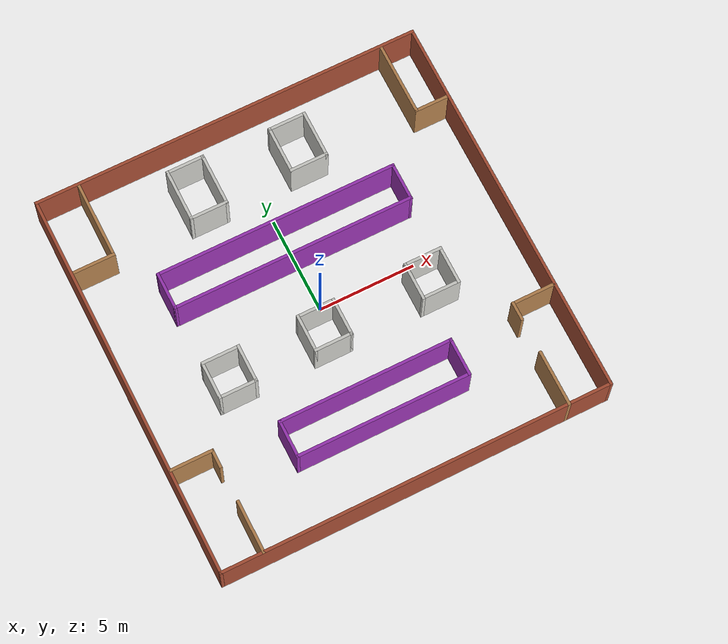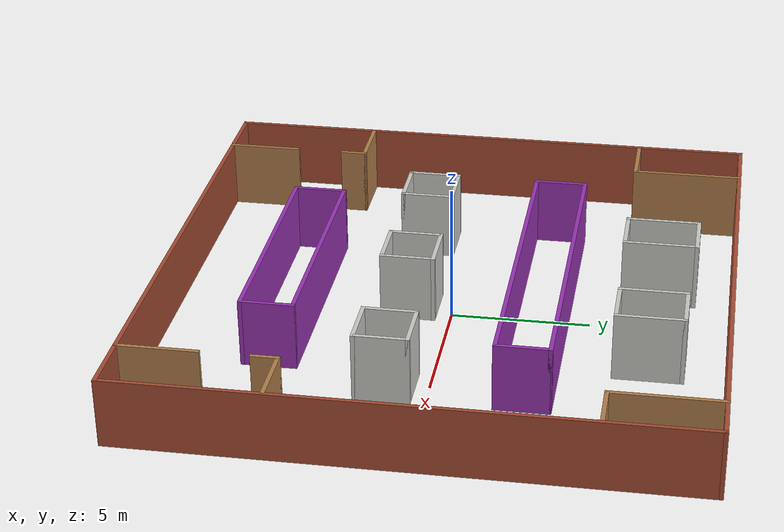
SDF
<?xml version='1.0'?>
<sdf version='1.7'>
  <model name='house'>
    <pose>0 -8.9e-05 0 0 -0 0</pose>
    <link name='Wall_0'>
      <collision name='Wall_0_Collision'>
        <geometry>
          <box>
            <size>2 0.15 2.5</size>
          </box>
        </geometry>
        <pose>0 0 1.25 0 -0 0</pose>
      </collision>
      <visual name='Wall_0_Visual'>
        <pose>0 0 1.25 0 -0 0</pose>
        <geometry>
          <box>
            <size>2 0.15 2.5</size>
          </box>
        </geometry>
        <material>
          <script>
            <uri>file://media/materials/scripts/gazebo.material</uri>
            <name>Gazebo/CeilingTiled</name>
          </script>
          <ambient>1 1 1 1</ambient>
        </material>
        <meta>
          <layer>0</layer>
        </meta>
      </visual>
      <pose>-0.536584 -2.46607 0 0 -0 0</pose>
    </link>
    <link name='Wall_1'>
      <collision name='Wall_1_Collision'>
        <geometry>
          <box>
            <size>2 0.15 2.5</size>
          </box>
        </geometry>
        <pose>0 0 1.25 0 -0 0</pose>
      </collision>
      <visual name='Wall_1_Visual'>
        <pose>0 0 1.25 0 -0 0</pose>
        <geometry>
          <box>
            <size>2 0.15 2.5</size>
          </box>
        </geometry>
        <material>
          <script>
            <uri>file://media/materials/scripts/gazebo.material</uri>
            <name>Gazebo/CeilingTiled</name>
          </script>
          <ambient>1 1 1 1</ambient>
        </material>
        <meta>
          <layer>0</layer>
        </meta>
      </visual>
      <pose>0.388416 -1.54107 0 0 -0 1.5708</pose>
    </link>
    <link name='Wall_10'>
      <collision name='Wall_10_Collision'>
        <geometry>
          <box>
            <size>2 0.15 2.5</size>
          </box>
        </geometry>
        <pose>0 0 1.25 0 -0 0</pose>
      </collision>
      <visual name='Wall_10_Visual'>
        <pose>0 0 1.25 0 -0 0</pose>
        <geometry>
          <box>
            <size>2 0.15 2.5</size>
          </box>
        </geometry>
        <material>
          <script>
            <uri>file://media/materials/scripts/gazebo.material</uri>
            <name>Gazebo/CeilingTiled</name>
          </script>
          <ambient>1 1 1 1</ambient>
        </material>
        <meta>
          <layer>0</layer>
        </meta>
      </visual>
      <pose>-4.57919 -1.61774 0 0 -0 1.5708</pose>
    </link>
    <link name='Wall_11'>
      <collision name='Wall_11_Collision'>
        <geometry>
          <box>
            <size>2 0.15 2.5</size>
          </box>
        </geometry>
        <pose>0 0 1.25 0 -0 0</pose>
      </collision>
      <visual name='Wall_11_Visual'>
        <pose>0 0 1.25 0 -0 0</pose>
        <geometry>
          <box>
            <size>2 0.15 2.5</size>
          </box>
        </geometry>
        <material>
          <script>
            <uri>file://media/materials/scripts/gazebo.material</uri>
            <name>Gazebo/CeilingTiled</name>
          </script>
          <ambient>1 1 1 1</ambient>
        </material>
        <meta>
          <layer>0</layer>
        </meta>
      </visual>
      <pose>-5.50419 -0.692743 0 0 -0 3.14159</pose>
    </link>
    <link name='Wall_12'>
      <collision name='Wall_12_Collision'>
        <geometry>
          <box>
            <size>2 0.15 2.5</size>
          </box>
        </geometry>
        <pose>0 0 1.25 0 -0 0</pose>
      </collision>
      <visual name='Wall_12_Visual'>
        <pose>0 0 1.25 0 -0 0</pose>
        <geometry>
          <box>
            <size>2 0.15 2.5</size>
          </box>
        </geometry>
        <material>
          <script>
            <uri>file://media/materials/scripts/gazebo.material</uri>
            <name>Gazebo/CeilingTiled</name>
          </script>
          <ambient>1 1 1 1</ambient>
        </material>
        <meta>
          <layer>0</layer>
        </meta>
      </visual>
      <pose>-6.42919 -1.61774 0 0 -0 -1.5708</pose>
    </link>
    <link name='Wall_13'>
      <collision name='Wall_13_Collision'>
        <geometry>
          <box>
            <size>2 0.15 2.5</size>
          </box>
        </geometry>
        <pose>0 0 1.25 0 -0 0</pose>
      </collision>
      <visual name='Wall_13_Visual'>
        <pose>0 0 1.25 0 -0 0</pose>
        <geometry>
          <box>
            <size>2 0.15 2.5</size>
          </box>
        </geometry>
        <material>
          <script>
            <uri>file://media/materials/scripts/gazebo.material</uri>
            <name>Gazebo/CeilingTiled</name>
          </script>
          <ambient>1 1 1 1</ambient>
        </material>
        <meta>
          <layer>0</layer>
        </meta>
      </visual>
      <pose>-5.50419 -2.54274 0 0 -0 0</pose>
    </link>
    <link name='Wall_15'>
      <collision name='Wall_15_Collision'>
        <geometry>
          <box>
            <size>12.5 0.15 2.5</size>
          </box>
        </geometry>
        <pose>0 0 1.25 0 -0 0</pose>
      </collision>
      <visual name='Wall_15_Visual'>
        <pose>0 0 1.25 0 -0 0</pose>
        <geometry>
          <box>
            <size>12.5 0.15 2.5</size>
          </box>
        </geometry>
        <material>
          <lighting>1</lighting>
          <script>
            <uri>file://media/materials/scripts/gazebo.material</uri>
            <name>Gazebo/Purple</name>
          </script>
          <shader type='pixel'>
            <normal_map>__default__</normal_map>
          </shader>
          <ambient>1 0 1 1</ambient>
          <diffuse>1 0 1 1</diffuse>
          <specular>0.1 0.1 0.1 1</specular>
          <emissive>0 0 0 1</emissive>
        </material>
        <meta>
          <layer>0</layer>
        </meta>
      </visual>
      <pose>-0.210973 2.33564 0 0 -0 0</pose>
    </link>
    <link name='Wall_16'>
      <collision name='Wall_16_Collision'>
        <geometry>
          <box>
            <size>2 0.15 2.5</size>
          </box>
        </geometry>
        <pose>0 0 1.25 0 -0 0</pose>
      </collision>
      <visual name='Wall_16_Visual'>
        <pose>0 0 1.25 0 -0 0</pose>
        <geometry>
          <box>
            <size>2 0.15 2.5</size>
          </box>
        </geometry>
        <material>
          <lighting>1</lighting>
          <script>
            <uri>file://media/materials/scripts/gazebo.material</uri>
            <name>Gazebo/Purple</name>
          </script>
          <shader type='pixel'>
            <normal_map>__default__</normal_map>
          </shader>
          <ambient>1 0 1 1</ambient>
          <diffuse>1 0 1 1</diffuse>
          <specular>0.1 0.1 0.1 1</specular>
          <emissive>0 0 0 1</emissive>
        </material>
        <meta>
          <layer>0</layer>
        </meta>
      </visual>
      <pose>5.96403 3.26064 0 0 -0 1.5708</pose>
    </link>
    <link name='Wall_17'>
      <collision name='Wall_17_Collision'>
        <geometry>
          <box>
            <size>12.5 0.15 2.5</size>
          </box>
        </geometry>
        <pose>0 0 1.25 0 -0 0</pose>
      </collision>
      <visual name='Wall_17_Visual'>
        <pose>0 0 1.25 0 -0 0</pose>
        <geometry>
          <box>
            <size>12.5 0.15 2.5</size>
          </box>
        </geometry>
        <material>
          <lighting>1</lighting>
          <script>
            <uri>file://media/materials/scripts/gazebo.material</uri>
            <name>Gazebo/Purple</name>
          </script>
          <shader type='pixel'>
            <normal_map>__default__</normal_map>
          </shader>
          <ambient>1 0 1 1</ambient>
          <diffuse>1 0 1 1</diffuse>
          <specular>0.1 0.1 0.1 1</specular>
          <emissive>0 0 0 1</emissive>
        </material>
        <meta>
          <layer>0</layer>
        </meta>
      </visual>
      <pose>-0.210973 4.18565 0 0 -0 3.14159</pose>
    </link>
    <link name='Wall_18'>
      <collision name='Wall_18_Collision'>
        <geometry>
          <box>
            <size>2 0.15 2.5</size>
          </box>
        </geometry>
        <pose>0 0 1.25 0 -0 0</pose>
      </collision>
      <visual name='Wall_18_Visual'>
        <pose>0 0 1.25 0 -0 0</pose>
        <geometry>
          <box>
            <size>2 0.15 2.5</size>
          </box>
        </geometry>
        <material>
          <lighting>1</lighting>
          <script>
            <uri>file://media/materials/scripts/gazebo.material</uri>
            <name>Gazebo/Purple</name>
          </script>
          <shader type='pixel'>
            <normal_map>__default__</normal_map>
          </shader>
          <ambient>1 0 1 1</ambient>
          <diffuse>1 0 1 1</diffuse>
          <specular>0.1 0.1 0.1 1</specular>
          <emissive>0 0 0 1</emissive>
        </material>
        <meta>
          <layer>0</layer>
        </meta>
      </visual>
      <pose>-6.38597 3.26064 0 0 -0 -1.5708</pose>
    </link>
    <link name='Wall_2'>
      <collision name='Wall_2_Collision'>
        <geometry>
          <box>
            <size>2 0.15 2.5</size>
          </box>
        </geometry>
        <pose>0 0 1.25 0 -0 0</pose>
      </collision>
      <visual name='Wall_2_Visual'>
        <pose>0 0 1.25 0 -0 0</pose>
        <geometry>
          <box>
            <size>2 0.15 2.5</size>
          </box>
        </geometry>
        <material>
          <script>
            <uri>file://media/materials/scripts/gazebo.material</uri>
            <name>Gazebo/CeilingTiled</name>
          </script>
          <ambient>1 1 1 1</ambient>
        </material>
        <meta>
          <layer>0</layer>
        </meta>
      </visual>
      <pose>-0.536584 -0.616074 0 0 -0 3.14159</pose>
    </link>
    <link name='Wall_26'>
      <collision name='Wall_26_Collision'>
        <geometry>
          <box>
            <size>2 0.15 2.5</size>
          </box>
        </geometry>
        <pose>0 0 1.25 0 -0 0</pose>
      </collision>
      <visual name='Wall_26_Visual'>
        <pose>0 0 1.25 0 -0 0</pose>
        <geometry>
          <box>
            <size>2 0.15 2.5</size>
          </box>
        </geometry>
        <material>
          <script>
            <uri>file://media/materials/scripts/gazebo.material</uri>
            <name>Gazebo/CeilingTiled</name>
          </script>
          <ambient>1 1 1 1</ambient>
        </material>
        <meta>
          <layer>0</layer>
        </meta>
      </visual>
      <pose>-2.85415 6.03307 0 0 -0 0</pose>
    </link>
    <link name='Wall_27'>
      <collision name='Wall_27_Collision'>
        <geometry>
          <box>
            <size>2.75 0.15 2.5</size>
          </box>
        </geometry>
        <pose>0 0 1.25 0 -0 0</pose>
      </collision>
      <visual name='Wall_27_Visual'>
        <pose>0 0 1.25 0 -0 0</pose>
        <geometry>
          <box>
            <size>2.75 0.15 2.5</size>
          </box>
        </geometry>
        <material>
          <script>
            <uri>file://media/materials/scripts/gazebo.material</uri>
            <name>Gazebo/CeilingTiled</name>
          </script>
          <ambient>1 1 1 1</ambient>
        </material>
        <meta>
          <layer>0</layer>
        </meta>
      </visual>
      <pose>-1.92915 7.33307 0 0 -0 1.5708</pose>
    </link>
    <link name='Wall_3'>
      <collision name='Wall_3_Collision'>
        <geometry>
          <box>
            <size>2 0.15 2.5</size>
          </box>
        </geometry>
        <pose>0 0 1.25 0 -0 0</pose>
      </collision>
      <visual name='Wall_3_Visual'>
        <pose>0 0 1.25 0 -0 0</pose>
        <geometry>
          <box>
            <size>2 0.15 2.5</size>
          </box>
        </geometry>
        <material>
          <script>
            <uri>file://media/materials/scripts/gazebo.material</uri>
            <name>Gazebo/CeilingTiled</name>
          </script>
          <ambient>1 1 1 1</ambient>
        </material>
        <meta>
          <layer>0</layer>
        </meta>
      </visual>
      <pose>-1.46158 -1.54107 0 0 -0 -1.5708</pose>
    </link>
    <link name='Wall_30'>
      <collision name='Wall_30_Collision'>
        <geometry>
          <box>
            <size>2.75 0.15 2.5</size>
          </box>
        </geometry>
        <pose>0 0 1.25 0 -0 0</pose>
      </collision>
      <visual name='Wall_30_Visual'>
        <pose>0 0 1.25 0 -0 0</pose>
        <geometry>
          <box>
            <size>2.75 0.15 2.5</size>
          </box>
        </geometry>
        <material>
          <script>
            <uri>file://media/materials/scripts/gazebo.material</uri>
            <name>Gazebo/CeilingTiled</name>
          </script>
          <ambient>1 1 1 1</ambient>
        </material>
        <meta>
          <layer>0</layer>
        </meta>
      </visual>
      <pose>-3.77915 7.33307 0 0 -0 1.5708</pose>
    </link>
    <link name='Wall_31'>
      <collision name='Wall_31_Collision'>
        <geometry>
          <box>
            <size>2 0.15 2.5</size>
          </box>
        </geometry>
        <pose>0 0 1.25 0 -0 0</pose>
      </collision>
      <visual name='Wall_31_Visual'>
        <pose>0 0 1.25 0 -0 0</pose>
        <geometry>
          <box>
            <size>2 0.15 2.5</size>
          </box>
        </geometry>
        <material>
          <script>
            <uri>file://media/materials/scripts/gazebo.material</uri>
            <name>Gazebo/CeilingTiled</name>
          </script>
          <ambient>1 1 1 1</ambient>
        </material>
        <meta>
          <layer>0</layer>
        </meta>
      </visual>
      <pose>-2.85415 8.63307 0 0 -0 0</pose>
    </link>
    <link name='Wall_33'>
      <collision name='Wall_33_Collision'>
        <geometry>
          <box>
            <size>2 0.15 2.5</size>
          </box>
        </geometry>
        <pose>0 0 1.25 0 -0 0</pose>
      </collision>
      <visual name='Wall_33_Visual'>
        <pose>0 0 1.25 0 -0 0</pose>
        <geometry>
          <box>
            <size>2 0.15 2.5</size>
          </box>
        </geometry>
        <material>
          <script>
            <uri>file://media/materials/scripts/gazebo.material</uri>
            <name>Gazebo/CeilingTiled</name>
          </script>
          <ambient>1 1 1 1</ambient>
        </material>
        <meta>
          <layer>0</layer>
        </meta>
      </visual>
      <pose>2.46259 6.11826 0 0 -0 0</pose>
    </link>
    <link name='Wall_34'>
      <collision name='Wall_34_Collision'>
        <geometry>
          <box>
            <size>2.5 0.15 2.5</size>
          </box>
        </geometry>
        <pose>0 0 1.25 0 -0 0</pose>
      </collision>
      <visual name='Wall_34_Visual'>
        <pose>0 0 1.25 0 -0 0</pose>
        <geometry>
          <box>
            <size>2.5 0.15 2.5</size>
          </box>
        </geometry>
        <material>
          <script>
            <uri>file://media/materials/scripts/gazebo.material</uri>
            <name>Gazebo/CeilingTiled</name>
          </script>
          <ambient>1 1 1 1</ambient>
        </material>
        <meta>
          <layer>0</layer>
        </meta>
      </visual>
      <pose>3.38759 7.29326 0 0 -0 1.5708</pose>
    </link>
    <link name='Wall_35'>
      <collision name='Wall_35_Collision'>
        <geometry>
          <box>
            <size>2 0.15 2.5</size>
          </box>
        </geometry>
        <pose>0 0 1.25 0 -0 0</pose>
      </collision>
      <visual name='Wall_35_Visual'>
        <pose>0 0 1.25 0 -0 0</pose>
        <geometry>
          <box>
            <size>2 0.15 2.5</size>
          </box>
        </geometry>
        <material>
          <script>
            <uri>file://media/materials/scripts/gazebo.material</uri>
            <name>Gazebo/CeilingTiled</name>
          </script>
          <ambient>1 1 1 1</ambient>
        </material>
        <meta>
          <layer>0</layer>
        </meta>
      </visual>
      <pose>2.46259 8.46826 0 0 -0 3.14159</pose>
    </link>
    <link name='Wall_36'>
      <collision name='Wall_36_Collision'>
        <geometry>
          <box>
            <size>2.5 0.15 2.5</size>
          </box>
        </geometry>
        <pose>0 0 1.25 0 -0 0</pose>
      </collision>
      <visual name='Wall_36_Visual'>
        <pose>0 0 1.25 0 -0 0</pose>
        <geometry>
          <box>
            <size>2.5 0.15 2.5</size>
          </box>
        </geometry>
        <material>
          <script>
            <uri>file://media/materials/scripts/gazebo.material</uri>
            <name>Gazebo/CeilingTiled</name>
          </script>
          <ambient>1 1 1 1</ambient>
        </material>
        <meta>
          <layer>0</layer>
        </meta>
      </visual>
      <pose>1.53759 7.29326 0 0 -0 -1.5708</pose>
    </link>
    <link name='Wall_40'>
      <collision name='Wall_40_Collision'>
        <geometry>
          <box>
            <size>9 0.15 2.5</size>
          </box>
        </geometry>
        <pose>0 0 1.25 0 -0 0</pose>
      </collision>
      <visual name='Wall_40_Visual'>
        <pose>0 0 1.25 0 -0 0</pose>
        <geometry>
          <box>
            <size>9 0.15 2.5</size>
          </box>
        </geometry>
        <material>
          <lighting>1</lighting>
          <script>
            <uri>file://media/materials/scripts/gazebo.material</uri>
            <name>Gazebo/Purple</name>
          </script>
          <shader type='pixel'>
            <normal_map>__default__</normal_map>
          </shader>
          <ambient>1 0 1 1</ambient>
          <diffuse>1 0 1 1</diffuse>
          <specular>0.1 0.1 0.1 1</specular>
          <emissive>0 0 0 1</emissive>
        </material>
        <meta>
          <layer>0</layer>
        </meta>
      </visual>
      <pose>-0.049056 -4.81442 0 0 -0 0</pose>
    </link>
    <link name='Wall_41'>
      <collision name='Wall_41_Collision'>
        <geometry>
          <box>
            <size>2 0.15 2.5</size>
          </box>
        </geometry>
        <pose>0 0 1.25 0 -0 0</pose>
      </collision>
      <visual name='Wall_41_Visual'>
        <pose>0 0 1.25 0 -0 0</pose>
        <geometry>
          <box>
            <size>2 0.15 2.5</size>
          </box>
        </geometry>
        <material>
          <lighting>1</lighting>
          <script>
            <uri>file://media/materials/scripts/gazebo.material</uri>
            <name>Gazebo/Purple</name>
          </script>
          <shader type='pixel'>
            <normal_map>__default__</normal_map>
          </shader>
          <ambient>1 0 1 1</ambient>
          <diffuse>1 0 1 1</diffuse>
          <specular>0.1 0.1 0.1 1</specular>
          <emissive>0 0 0 1</emissive>
        </material>
        <meta>
          <layer>0</layer>
        </meta>
      </visual>
      <pose>4.37594 -5.73942 0 0 -0 -1.5708</pose>
    </link>
    <link name='Wall_42'>
      <collision name='Wall_42_Collision'>
        <geometry>
          <box>
            <size>9 0.15 2.5</size>
          </box>
        </geometry>
        <pose>0 0 1.25 0 -0 0</pose>
      </collision>
      <visual name='Wall_42_Visual'>
        <pose>0 0 1.25 0 -0 0</pose>
        <geometry>
          <box>
            <size>9 0.15 2.5</size>
          </box>
        </geometry>
        <material>
          <lighting>1</lighting>
          <script>
            <uri>file://media/materials/scripts/gazebo.material</uri>
            <name>Gazebo/Purple</name>
          </script>
          <shader type='pixel'>
            <normal_map>__default__</normal_map>
          </shader>
          <ambient>1 0 1 1</ambient>
          <diffuse>1 0 1 1</diffuse>
          <specular>0.1 0.1 0.1 1</specular>
          <emissive>0 0 0 1</emissive>
        </material>
        <meta>
          <layer>0</layer>
        </meta>
      </visual>
      <pose>-0.049056 -6.66442 0 0 -0 3.14159</pose>
    </link>
    <link name='Wall_43'>
      <collision name='Wall_43_Collision'>
        <geometry>
          <box>
            <size>2 0.15 2.5</size>
          </box>
        </geometry>
        <pose>0 0 1.25 0 -0 0</pose>
      </collision>
      <visual name='Wall_43_Visual'>
        <pose>0 0 1.25 0 -0 0</pose>
        <geometry>
          <box>
            <size>2 0.15 2.5</size>
          </box>
        </geometry>
        <material>
          <lighting>1</lighting>
          <script>
            <uri>file://media/materials/scripts/gazebo.material</uri>
            <name>Gazebo/Purple</name>
          </script>
          <shader type='pixel'>
            <normal_map>__default__</normal_map>
          </shader>
          <ambient>1 0 1 1</ambient>
          <diffuse>1 0 1 1</diffuse>
          <specular>0.1 0.1 0.1 1</specular>
          <emissive>0 0 0 1</emissive>
        </material>
        <meta>
          <layer>0</layer>
        </meta>
      </visual>
      <pose>-4.47406 -5.73942 0 0 -0 1.5708</pose>
    </link>
    <link name='Wall_5'>
      <collision name='Wall_5_Collision'>
        <geometry>
          <box>
            <size>2 0.15 2.5</size>
          </box>
        </geometry>
        <pose>0 0 1.25 0 -0 0</pose>
      </collision>
      <visual name='Wall_5_Visual'>
        <pose>0 0 1.25 0 -0 0</pose>
        <geometry>
          <box>
            <size>2 0.15 2.5</size>
          </box>
        </geometry>
        <material>
          <script>
            <uri>file://media/materials/scripts/gazebo.material</uri>
            <name>Gazebo/CeilingTiled</name>
          </script>
          <ambient>1 1 1 1</ambient>
        </material>
        <meta>
          <layer>0</layer>
        </meta>
      </visual>
      <pose>5.11049 -0.561674 0 0 -0 0</pose>
    </link>
    <link name='Wall_51'>
      <collision name='Wall_51_Collision'>
        <geometry>
          <box>
            <size>2.91936 0.15 2.5</size>
          </box>
        </geometry>
        <pose>0 0 1.25 0 -0 0</pose>
      </collision>
      <visual name='Wall_51_Visual'>
        <pose>0 0 1.25 0 -0 0</pose>
        <geometry>
          <box>
            <size>2.91936 0.15 2.5</size>
          </box>
        </geometry>
        <material>
          <script>
            <uri>file://media/materials/scripts/gazebo.material</uri>
            <name>Gazebo/Wood</name>
          </script>
          <ambient>1 1 1 1</ambient>
        </material>
        <meta>
          <layer>0</layer>
        </meta>
      </visual>
      <pose>7.806 -8.61541 0 0 -0 1.5708</pose>
    </link>
    <link name='Wall_53'>
      <collision name='Wall_53_Collision'>
        <geometry>
          <box>
            <size>1 0.15 2.5</size>
          </box>
        </geometry>
        <pose>0 0 1.25 0 -0 0</pose>
      </collision>
      <visual name='Wall_53_Visual'>
        <pose>0 0 1.25 0 -0 0</pose>
        <geometry>
          <box>
            <size>1 0.15 2.5</size>
          </box>
        </geometry>
        <material>
          <script>
            <uri>file://media/materials/scripts/gazebo.material</uri>
            <name>Gazebo/Wood</name>
          </script>
          <ambient>1 1 1 1</ambient>
        </material>
        <meta>
          <layer>0</layer>
        </meta>
      </visual>
      <pose>7.80558 -4.95555 0 0 -0 1.5708</pose>
    </link>
    <link name='Wall_54'>
      <collision name='Wall_54_Collision'>
        <geometry>
          <box>
            <size>2.25 0.15 2.5</size>
          </box>
        </geometry>
        <pose>0 0 1.25 0 -0 0</pose>
      </collision>
      <visual name='Wall_54_Visual'>
        <pose>0 0 1.25 0 -0 0</pose>
        <geometry>
          <box>
            <size>2.25 0.15 2.5</size>
          </box>
        </geometry>
        <material>
          <script>
            <uri>file://media/materials/scripts/gazebo.material</uri>
            <name>Gazebo/Wood</name>
          </script>
          <ambient>1 1 1 1</ambient>
        </material>
        <meta>
          <layer>0</layer>
        </meta>
      </visual>
      <pose>8.85558 -4.53055 0 0 -0 0</pose>
    </link>
    <link name='Wall_6'>
      <collision name='Wall_6_Collision'>
        <geometry>
          <box>
            <size>2 0.15 2.5</size>
          </box>
        </geometry>
        <pose>0 0 1.25 0 -0 0</pose>
      </collision>
      <visual name='Wall_6_Visual'>
        <pose>0 0 1.25 0 -0 0</pose>
        <geometry>
          <box>
            <size>2 0.15 2.5</size>
          </box>
        </geometry>
        <material>
          <script>
            <uri>file://media/materials/scripts/gazebo.material</uri>
            <name>Gazebo/CeilingTiled</name>
          </script>
          <ambient>1 1 1 1</ambient>
        </material>
        <meta>
          <layer>0</layer>
        </meta>
      </visual>
      <pose>6.03549 -1.48667 0 0 -0 -1.5708</pose>
    </link>
    <link name='Wall_60'>
      <collision name='Wall_60_Collision'>
        <geometry>
          <box>
            <size>2.77266 0.15 2.5</size>
          </box>
        </geometry>
        <pose>0 0 1.25 0 -0 0</pose>
      </collision>
      <visual name='Wall_60_Visual'>
        <pose>0 0 1.25 0 -0 0</pose>
        <geometry>
          <box>
            <size>2.77266 0.15 2.5</size>
          </box>
        </geometry>
        <material>
          <script>
            <uri>file://media/materials/scripts/gazebo.material</uri>
            <name>Gazebo/Wood</name>
          </script>
          <ambient>1 1 1 1</ambient>
        </material>
        <meta>
          <layer>0</layer>
        </meta>
      </visual>
      <pose>-7.847 -8.68841 0 0 -0 1.5708</pose>
    </link>
    <link name='Wall_62'>
      <collision name='Wall_62_Collision'>
        <geometry>
          <box>
            <size>1 0.15 2.5</size>
          </box>
        </geometry>
        <pose>0 0 1.25 0 -0 0</pose>
      </collision>
      <visual name='Wall_62_Visual'>
        <pose>0 0 1.25 0 -0 0</pose>
        <geometry>
          <box>
            <size>1 0.15 2.5</size>
          </box>
        </geometry>
        <material>
          <script>
            <uri>file://media/materials/scripts/gazebo.material</uri>
            <name>Gazebo/Wood</name>
          </script>
          <ambient>1 1 1 1</ambient>
        </material>
        <meta>
          <layer>0</layer>
        </meta>
      </visual>
      <pose>-7.84711 -5.10225 0 0 -0 1.5708</pose>
    </link>
    <link name='Wall_63'>
      <collision name='Wall_63_Collision'>
        <geometry>
          <box>
            <size>2.25 0.15 2.5</size>
          </box>
        </geometry>
        <pose>0 0 1.25 0 -0 0</pose>
      </collision>
      <visual name='Wall_63_Visual'>
        <pose>0 0 1.25 0 -0 0</pose>
        <geometry>
          <box>
            <size>2.25 0.15 2.5</size>
          </box>
        </geometry>
        <material>
          <script>
            <uri>file://media/materials/scripts/gazebo.material</uri>
            <name>Gazebo/Wood</name>
          </script>
          <ambient>1 1 1 1</ambient>
        </material>
        <meta>
          <layer>0</layer>
        </meta>
      </visual>
      <pose>-8.89711 -4.67725 0 0 -0 3.14159</pose>
    </link>
    <link name='Wall_66'>
      <collision name='Wall_66_Collision'>
        <geometry>
          <box>
            <size>4.1266 0.15 2.5</size>
          </box>
        </geometry>
        <pose>0 0 1.25 0 -0 0</pose>
      </collision>
      <visual name='Wall_66_Visual'>
        <pose>0 0 1.25 0 -0 0</pose>
        <geometry>
          <box>
            <size>4.1266 0.15 2.5</size>
          </box>
        </geometry>
        <material>
          <script>
            <uri>file://media/materials/scripts/gazebo.material</uri>
            <name>Gazebo/Wood</name>
          </script>
          <ambient>1 1 1 1</ambient>
        </material>
        <meta>
          <layer>0</layer>
        </meta>
      </visual>
      <pose>-7.824 8.01159 0 0 -0 -1.5708</pose>
    </link>
    <link name='Wall_67'>
      <collision name='Wall_67_Collision'>
        <geometry>
          <box>
            <size>2.25 0.15 2.5</size>
          </box>
        </geometry>
        <pose>0 0 1.25 0 -0 0</pose>
      </collision>
      <visual name='Wall_67_Visual'>
        <pose>0 0 1.25 0 -0 0</pose>
        <geometry>
          <box>
            <size>2.25 0.15 2.5</size>
          </box>
        </geometry>
        <material>
          <script>
            <uri>file://media/materials/scripts/gazebo.material</uri>
            <name>Gazebo/Wood</name>
          </script>
          <ambient>1 1 1 1</ambient>
        </material>
        <meta>
          <layer>0</layer>
        </meta>
      </visual>
      <pose>-8.87421 6.02329 0 0 -0 3.1414</pose>
    </link>
    <link name='Wall_69'>
      <collision name='Wall_69_Collision'>
        <geometry>
          <box>
            <size>3.94656 0.15 2.5</size>
          </box>
        </geometry>
        <pose>0 0 1.25 0 -0 0</pose>
      </collision>
      <visual name='Wall_69_Visual'>
        <pose>0 0 1.25 0 -0 0</pose>
        <geometry>
          <box>
            <size>3.94656 0.15 2.5</size>
          </box>
        </geometry>
        <material>
          <script>
            <uri>file://media/materials/scripts/gazebo.material</uri>
            <name>Gazebo/Wood</name>
          </script>
          <ambient>1 1 1 1</ambient>
        </material>
        <meta>
          <layer>0</layer>
        </meta>
      </visual>
      <pose>8.266 8.10159 0 0 -0 -1.5708</pose>
    </link>
    <link name='Wall_7'>
      <collision name='Wall_7_Collision'>
        <geometry>
          <box>
            <size>2 0.15 2.5</size>
          </box>
        </geometry>
        <pose>0 0 1.25 0 -0 0</pose>
      </collision>
      <visual name='Wall_7_Visual'>
        <pose>0 0 1.25 0 -0 0</pose>
        <geometry>
          <box>
            <size>2 0.15 2.5</size>
          </box>
        </geometry>
        <material>
          <script>
            <uri>file://media/materials/scripts/gazebo.material</uri>
            <name>Gazebo/CeilingTiled</name>
          </script>
          <ambient>1 1 1 1</ambient>
        </material>
        <meta>
          <layer>0</layer>
        </meta>
      </visual>
      <pose>5.11049 -2.41167 0 0 -0 3.14159</pose>
    </link>
    <link name='Wall_72'>
      <collision name='Wall_72_Collision'>
        <geometry>
          <box>
            <size>1.75 0.15 2.5</size>
          </box>
        </geometry>
        <pose>0 0 1.25 0 -0 0</pose>
      </collision>
      <visual name='Wall_72_Visual'>
        <pose>0 0 1.25 0 -0 0</pose>
        <geometry>
          <box>
            <size>1.75 0.15 2.5</size>
          </box>
        </geometry>
        <material>
          <script>
            <uri>file://media/materials/scripts/gazebo.material</uri>
            <name>Gazebo/Wood</name>
          </script>
          <ambient>1 1 1 1</ambient>
        </material>
        <meta>
          <layer>0</layer>
        </meta>
      </visual>
      <pose>9.06622 6.20331 0 0 -0 0.000273</pose>
    </link>
    <link name='Wall_75'>
      <collision name='Wall_75_Collision'>
        <geometry>
          <box>
            <size>20.15 0.15 2.5</size>
          </box>
        </geometry>
        <pose>0 0 1.25 0 -0 0</pose>
      </collision>
      <visual name='Wall_75_Visual'>
        <pose>0 0 1.25 0 -0 0</pose>
        <geometry>
          <box>
            <size>20.15 0.15 2.5</size>
          </box>
        </geometry>
        <material>
          <script>
            <uri>file://media/materials/scripts/gazebo.material</uri>
            <name>Gazebo/Bricks</name>
          </script>
          <ambient>1 1 1 1</ambient>
        </material>
        <meta>
          <layer>0</layer>
        </meta>
      </visual>
      <pose>0 -9.99991 0 0 -0 0</pose>
    </link>
    <link name='Wall_77'>
      <collision name='Wall_77_Collision'>
        <geometry>
          <box>
            <size>20.15 0.15 2.5</size>
          </box>
        </geometry>
        <pose>0 0 1.25 0 -0 0</pose>
      </collision>
      <visual name='Wall_77_Visual'>
        <pose>0 0 1.25 0 -0 0</pose>
        <geometry>
          <box>
            <size>20.15 0.15 2.5</size>
          </box>
        </geometry>
        <material>
          <script>
            <uri>file://media/materials/scripts/gazebo.material</uri>
            <name>Gazebo/Bricks</name>
          </script>
          <ambient>1 1 1 1</ambient>
        </material>
        <meta>
          <layer>0</layer>
        </meta>
      </visual>
      <pose>10 8.9e-05 0 0 -0 1.5708</pose>
    </link>
    <link name='Wall_79'>
      <collision name='Wall_79_Collision'>
        <geometry>
          <box>
            <size>20.15 0.15 2.5</size>
          </box>
        </geometry>
        <pose>0 0 1.25 0 -0 0</pose>
      </collision>
      <visual name='Wall_79_Visual'>
        <pose>0 0 1.25 0 -0 0</pose>
        <geometry>
          <box>
            <size>20.15 0.15 2.5</size>
          </box>
        </geometry>
        <material>
          <script>
            <uri>file://media/materials/scripts/gazebo.material</uri>
            <name>Gazebo/Bricks</name>
          </script>
          <ambient>1 1 1 1</ambient>
        </material>
        <meta>
          <layer>0</layer>
        </meta>
      </visual>
      <pose>-10 8.9e-05 0 0 -0 1.5708</pose>
    </link>
    <link name='Wall_8'>
      <collision name='Wall_8_Collision'>
        <geometry>
          <box>
            <size>2 0.15 2.5</size>
          </box>
        </geometry>
        <pose>0 0 1.25 0 -0 0</pose>
      </collision>
      <visual name='Wall_8_Visual'>
        <pose>0 0 1.25 0 -0 0</pose>
        <geometry>
          <box>
            <size>2 0.15 2.5</size>
          </box>
        </geometry>
        <material>
          <script>
            <uri>file://media/materials/scripts/gazebo.material</uri>
            <name>Gazebo/CeilingTiled</name>
          </script>
          <ambient>1 1 1 1</ambient>
        </material>
        <meta>
          <layer>0</layer>
        </meta>
      </visual>
      <pose>4.18549 -1.48667 0 0 -0 1.5708</pose>
    </link>
    <link name='Wall_81'>
      <collision name='Wall_81_Collision'>
        <geometry>
          <box>
            <size>20.15 0.15 2.5</size>
          </box>
        </geometry>
        <pose>0 0 1.25 0 -0 0</pose>
      </collision>
      <visual name='Wall_81_Visual'>
        <pose>0 0 1.25 0 -0 0</pose>
        <geometry>
          <box>
            <size>20.15 0.15 2.5</size>
          </box>
        </geometry>
        <material>
          <script>
            <uri>file://media/materials/scripts/gazebo.material</uri>
            <name>Gazebo/Bricks</name>
          </script>
          <ambient>1 1 1 1</ambient>
        </material>
        <meta>
          <layer>0</layer>
        </meta>
      </visual>
      <pose>0 10.0001 0 0 -0 0</pose>
    </link>
    <static>1</static>
  </model>
</sdf>
